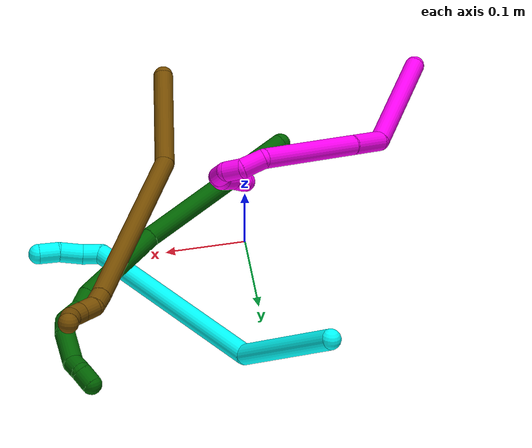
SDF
<sdf version="1.7">
 <world name="default">
  <model name="photoneo_s_sensor">
   <static>1</static>
   <pose>0 0 2 1.57079 1.57079 3.14159</pose>
   <link name="link">
    <inertial><mass>0.1</mass></inertial>
    <sensor name="sensor" type="depth">
     <update_rate>30</update_rate>
     <camera>
      <horizontal_fov>1.22</horizontal_fov>
      <image><width>1920</width><height>1200</height><format>B8G8R8</format></image>
      <clip><near>0.1</near><far>4</far></clip>
      <depth_camera><output>points</output></depth_camera>
     </camera>
     <plugin name="camera_plugin" filename="libgazebo_ros_depth_camera.so">
      <baseline>0.2</baseline>
      <alwaysOn>1</alwaysOn>
      <updateRate>0.0</updateRate>
      <cameraName>camera_ir</cameraName>
      <imageTopicName>/camera/color/image_raw</imageTopicName>
      <cameraInfoTopicName>/camera/color/camera_info</cameraInfoTopicName>
      <depthImageTopicName>/camera/depth/image_raw</depthImageTopicName>
      <depthImageCameraInfoTopicName>/camera/depth/camera_info</depthImageCameraInfoTopicName>
      <pointCloudTopicName>/camera/depth/points</pointCloudTopicName>
      <frameName>fr_optical</frameName>
      <pointCloudCutoff>0.1</pointCloudCutoff>
      <pointCloudCutoffMax>2.0</pointCloudCutoffMax>
      <distortionK1>0</distortionK1>
      <distortionK2>0</distortionK2>
      <distortionK3>0</distortionK3>
      <distortionT1>0</distortionT1>
      <distortionT2>0</distortionT2>
      <CxPrime>0</CxPrime>
      <Cx>0</Cx>
      <Cy>0</Cy>
      <focalLength>0</focalLength>
      <hackBaseline>0</hackBaseline>
     </plugin>
    </sensor>
   </link>
  </model>
  <model name="bin">
   <static>1</static>
   <link name="bottom">
    <collision name="collision-bottom">
     <pose>0 0 -0.01 0 -0 0</pose>
     <geometry><box><size>0.8 0.6 0.02</size></box></geometry>
     <surface>
      <friction><ode><mu>100</mu><mu2>100</mu2></ode></friction>
      <contact><collide_bitmask>65535</collide_bitmask></contact>
     </surface>
    </collision>
   </link>
   <link name="west_wall">
    <collision name="collision-west_wall">
     <pose>-0.41 0 0.1 0 -0 0</pose>
     <geometry><box><size>0.02 0.6 0.2</size></box></geometry>
     <surface>
      <friction><ode><mu>100</mu><mu2>100</mu2></ode></friction>
      <contact><collide_bitmask>65535</collide_bitmask></contact>
     </surface>
    </collision>
   </link>
   <link name="east_wall">
    <collision name="collision-east_wall">
     <pose>0.41 0 0.1 0 -0 0</pose>
     <geometry><box><size>0.02 0.6 0.2</size></box></geometry>
     <surface>
      <friction><ode><mu>100</mu><mu2>100</mu2></ode></friction>
      <contact><collide_bitmask>65535</collide_bitmask></contact>
     </surface>
    </collision>
   </link>
   <link name="south_wall">
    <collision name="collision-south_wall">
     <pose>0 -0.31 0.1 0 -0 0</pose>
     <geometry><box><size>0.8 0.02 0.2</size></box></geometry>
     <surface>
      <friction><ode><mu>100</mu><mu2>100</mu2></ode></friction>
      <contact><collide_bitmask>65535</collide_bitmask></contact>
     </surface>
    </collision>
   </link>
   <link name="north_wall">
    <collision name="collision-north_wall">
     <pose>0 0.31 0.1 0 -0 0</pose>
     <geometry><box><size>0.8 0.02 0.2</size></box></geometry>
     <surface>
      <friction><ode><mu>100</mu><mu2>100</mu2></ode></friction>
      <contact><collide_bitmask>65535</collide_bitmask></contact>
     </surface>
    </collision>
   </link>
  </model>
  <model name="3">
   <static>0</static>
   <link name="3">
    <collision name="collision-cylinder-e_1_1_4">
     <pose>0.060067 -0.028715 0.042455 0.594686 0.864403 0.280842</pose>
     <geometry><cylinder><radius>0.0125</radius><length>0.157924</length></cylinder></geometry>
     <surface>
      <friction><ode><mu>1.16</mu><mu2>1.16</mu2><slip1>0</slip1><slip2>0</slip2></ode></friction>
      <contact><ode><kp>1e+06</kp><kd>1</kd><max_vel>0</max_vel><min_depth>0.001</min_depth></ode></contact>
     </surface>
    </collision>
    <visual name="visual-cylinder-e_1_1_4">
     <pose>0.060067 -0.028715 0.042455 0.594686 0.864403 0.280842</pose>
     <geometry><cylinder><radius>0.0125</radius><length>0.157924</length></cylinder></geometry>
     <material><ambient>0.003922 1 0.996078 1</ambient></material>
    </visual>
    <collision name="collision-cylinder-e_2_4_5">
     <pose>0.240037 -0.110522 0.077009 1.71852 1.14988 1.28895</pose>
     <geometry><cylinder><radius>0.0125</radius><length>0.262739</length></cylinder></geometry>
     <surface>
      <friction><ode><mu>1.16</mu><mu2>1.16</mu2><slip1>0</slip1><slip2>0</slip2></ode></friction>
      <contact><ode><kp>1e+06</kp><kd>1</kd><max_vel>0</max_vel><min_depth>0.001</min_depth></ode></contact>
     </surface>
    </collision>
    <visual name="visual-cylinder-e_2_4_5">
     <pose>0.240037 -0.110522 0.077009 1.71852 1.14988 1.28895</pose>
     <geometry><cylinder><radius>0.0125</radius><length>0.262739</length></cylinder></geometry>
     <material><ambient>0.003922 1 0.996078 1</ambient></material>
    </visual>
    <collision name="collision-cylinder-e_3_5_6">
     <pose>0.364477 -0.174478 0.070447 1.44819 0.392929 0.348455</pose>
     <geometry><cylinder><radius>0.0125</radius><length>0.023697</length></cylinder></geometry>
     <surface>
      <friction><ode><mu>1.16</mu><mu2>1.16</mu2><slip1>0</slip1><slip2>0</slip2></ode></friction>
      <contact><ode><kp>1e+06</kp><kd>1</kd><max_vel>0</max_vel><min_depth>0.001</min_depth></ode></contact>
     </surface>
    </collision>
    <visual name="visual-cylinder-e_3_5_6">
     <pose>0.364477 -0.174478 0.070447 1.44819 0.392929 0.348455</pose>
     <geometry><cylinder><radius>0.0125</radius><length>0.023697</length></cylinder></geometry>
     <material><ambient>0.003922 1 0.996078 1</ambient></material>
    </visual>
    <collision name="collision-cylinder-e_4_6_7">
     <pose>0.371207 -0.200186 0.069565 1.71924 0.145094 0.168304</pose>
     <geometry><cylinder><radius>0.0125</radius><length>0.030338</length></cylinder></geometry>
     <surface>
      <friction><ode><mu>1.16</mu><mu2>1.16</mu2><slip1>0</slip1><slip2>0</slip2></ode></friction>
      <contact><ode><kp>1e+06</kp><kd>1</kd><max_vel>0</max_vel><min_depth>0.001</min_depth></ode></contact>
     </surface>
    </collision>
    <visual name="visual-cylinder-e_4_6_7">
     <pose>0.371207 -0.200186 0.069565 1.71924 0.145094 0.168304</pose>
     <geometry><cylinder><radius>0.0125</radius><length>0.030338</length></cylinder></geometry>
     <material><ambient>0.003922 1 0.996078 1</ambient></material>
    </visual>
    <collision name="collision-cylinder-e_5_7_2">
     <pose>0.374601 -0.227612 0.067911 1.52586 0.095063 0.090891</pose>
     <geometry><cylinder><radius>0.0125</radius><length>0.025301</length></cylinder></geometry>
     <surface>
      <friction><ode><mu>1.16</mu><mu2>1.16</mu2><slip1>0</slip1><slip2>0</slip2></ode></friction>
      <contact><ode><kp>1e+06</kp><kd>1</kd><max_vel>0</max_vel><min_depth>0.001</min_depth></ode></contact>
     </surface>
    </collision>
    <visual name="visual-cylinder-e_5_7_2">
     <pose>0.374601 -0.227612 0.067911 1.52586 0.095063 0.090891</pose>
     <geometry><cylinder><radius>0.0125</radius><length>0.025301</length></cylinder></geometry>
     <material><ambient>0.003922 1 0.996078 1</ambient></material>
    </visual>
    <collision name="collision-sphere-2">
     <pose>0.375802 -0.240192 0.068477 0 -0 0</pose>
     <geometry><sphere><radius>0.0125</radius></sphere></geometry>
     <surface>
      <friction><ode><mu>1.16</mu><mu2>1.16</mu2><slip1>0</slip1><slip2>0</slip2></ode></friction>
      <contact><ode><kp>1e+06</kp><kd>1</kd><max_vel>0</max_vel><min_depth>0.001</min_depth></ode></contact>
     </surface>
    </collision>
    <visual name="visual-sphere-2">
     <pose>0.375802 -0.240192 0.068477 0 -0 0</pose>
     <geometry><sphere><radius>0.0125</radius></sphere></geometry>
     <material><ambient>0.003922 1 0.996078 1</ambient></material>
    </visual>
    <collision name="collision-sphere-7">
     <pose>0.3734 -0.215031 0.067345 0 -0 0</pose>
     <geometry><sphere><radius>0.0125</radius></sphere></geometry>
     <surface>
      <friction><ode><mu>1.16</mu><mu2>1.16</mu2><slip1>0</slip1><slip2>0</slip2></ode></friction>
      <contact><ode><kp>1e+06</kp><kd>1</kd><max_vel>0</max_vel><min_depth>0.001</min_depth></ode></contact>
     </surface>
    </collision>
    <visual name="visual-sphere-7">
     <pose>0.3734 -0.215031 0.067345 0 -0 0</pose>
     <geometry><sphere><radius>0.0125</radius></sphere></geometry>
     <material><ambient>0.003922 1 0.996078 1</ambient></material>
    </visual>
    <collision name="collision-sphere-6">
     <pose>0.369014 -0.185342 0.071785 0 -0 0</pose>
     <geometry><sphere><radius>0.0125</radius></sphere></geometry>
     <surface>
      <friction><ode><mu>1.16</mu><mu2>1.16</mu2><slip1>0</slip1><slip2>0</slip2></ode></friction>
      <contact><ode><kp>1e+06</kp><kd>1</kd><max_vel>0</max_vel><min_depth>0.001</min_depth></ode></contact>
     </surface>
    </collision>
    <visual name="visual-sphere-6">
     <pose>0.369014 -0.185342 0.071785 0 -0 0</pose>
     <geometry><sphere><radius>0.0125</radius></sphere></geometry>
     <material><ambient>0.003922 1 0.996078 1</ambient></material>
    </visual>
    <collision name="collision-sphere-5">
     <pose>0.35994 -0.163615 0.069108 0 -0 0</pose>
     <geometry><sphere><radius>0.0125</radius></sphere></geometry>
     <surface>
      <friction><ode><mu>1.16</mu><mu2>1.16</mu2><slip1>0</slip1><slip2>0</slip2></ode></friction>
      <contact><ode><kp>1e+06</kp><kd>1</kd><max_vel>0</max_vel><min_depth>0.001</min_depth></ode></contact>
     </surface>
    </collision>
    <visual name="visual-sphere-5">
     <pose>0.35994 -0.163615 0.069108 0 -0 0</pose>
     <geometry><sphere><radius>0.0125</radius></sphere></geometry>
     <material><ambient>0.003922 1 0.996078 1</ambient></material>
    </visual>
    <collision name="collision-sphere-1">
     <geometry><sphere><radius>0.0125</radius></sphere></geometry>
     <surface>
      <friction><ode><mu>1.16</mu><mu2>1.16</mu2><slip1>0</slip1><slip2>0</slip2></ode></friction>
      <contact><ode><kp>1e+06</kp><kd>1</kd><max_vel>0</max_vel><min_depth>0.001</min_depth></ode></contact>
     </surface>
    </collision>
    <visual name="visual-sphere-1">
     <geometry><sphere><radius>0.0125</radius></sphere></geometry>
     <material><ambient>0.003922 1 0.996078 1</ambient></material>
    </visual>
    <collision name="collision-sphere-4">
     <pose>0.120134 -0.05743 0.08491 0 -0 0</pose>
     <geometry><sphere><radius>0.0125</radius></sphere></geometry>
     <surface>
      <friction><ode><mu>1.16</mu><mu2>1.16</mu2><slip1>0</slip1><slip2>0</slip2></ode></friction>
      <contact><ode><kp>1e+06</kp><kd>1</kd><max_vel>0</max_vel><min_depth>0.001</min_depth></ode></contact>
     </surface>
    </collision>
    <visual name="visual-sphere-4">
     <pose>0.120134 -0.05743 0.08491 0 -0 0</pose>
     <geometry><sphere><radius>0.0125</radius></sphere></geometry>
     <material><ambient>0.003922 1 0.996078 1</ambient></material>
    </visual>
    <inertial>
     <pose>0.20386 -0.09908 0.064872 0 -0 0</pose>
     <mass>0.5</mass>
     <inertia>
      <ixx>0.001077</ixx>
      <ixy>0</ixy>
      <ixz>0</ixz>
      <iyy>0.002203</iyy>
      <iyz>0</iyz>
      <izz>-0.000895</izz>
     </inertia>
    </inertial>
   </link>
   <pose>-0.048997 0.288097 0.189167 -2.93552 0.38466 -1.3883</pose>
  </model>
  <model name="6">
   <static>0</static>
   <link name="6">
    <collision name="collision-cylinder-e_1_1_4">
     <pose>0.023035 0.021707 0.104401 -0.204998 0.212754 -0.021966</pose>
     <geometry><cylinder><radius>0.0125</radius><length>0.218187</length></cylinder></geometry>
     <surface>
      <friction><ode><mu>1.16</mu><mu2>1.16</mu2><slip1>0</slip1><slip2>0</slip2></ode></friction>
      <contact><ode><kp>1e+06</kp><kd>1</kd><max_vel>0</max_vel><min_depth>0.001</min_depth></ode></contact>
     </surface>
    </collision>
    <visual name="visual-cylinder-e_1_1_4">
     <pose>0.023035 0.021707 0.104401 -0.204998 0.212754 -0.021966</pose>
     <geometry><cylinder><radius>0.0125</radius><length>0.218187</length></cylinder></geometry>
     <material><ambient>0 0.392157 0.003922 1</ambient></material>
    </visual>
    <collision name="collision-cylinder-e_2_4_5">
     <pose>0.06264 0.058884 0.261091 -0.287656 0.294995 -0.043029</pose>
     <geometry><cylinder><radius>0.0125</radius><length>0.113983</length></cylinder></geometry>
     <surface>
      <friction><ode><mu>1.16</mu><mu2>1.16</mu2><slip1>0</slip1><slip2>0</slip2></ode></friction>
      <contact><ode><kp>1e+06</kp><kd>1</kd><max_vel>0</max_vel><min_depth>0.001</min_depth></ode></contact>
     </surface>
    </collision>
    <visual name="visual-cylinder-e_2_4_5">
     <pose>0.06264 0.058884 0.261091 -0.287656 0.294995 -0.043029</pose>
     <geometry><cylinder><radius>0.0125</radius><length>0.113983</length></cylinder></geometry>
     <material><ambient>0 0.392157 0.003922 1</ambient></material>
    </visual>
    <collision name="collision-cylinder-e_3_5_6">
     <pose>0.083838 0.081736 0.322191 -0.697418 0.382843 -0.140681</pose>
     <geometry><cylinder><radius>0.0125</radius><length>0.024781</length></cylinder></geometry>
     <surface>
      <friction><ode><mu>1.16</mu><mu2>1.16</mu2><slip1>0</slip1><slip2>0</slip2></ode></friction>
      <contact><ode><kp>1e+06</kp><kd>1</kd><max_vel>0</max_vel><min_depth>0.001</min_depth></ode></contact>
     </surface>
    </collision>
    <visual name="visual-cylinder-e_3_5_6">
     <pose>0.083838 0.081736 0.322191 -0.697418 0.382843 -0.140681</pose>
     <geometry><cylinder><radius>0.0125</radius><length>0.024781</length></cylinder></geometry>
     <material><ambient>0 0.392157 0.003922 1</ambient></material>
    </visual>
    <collision name="collision-cylinder-e_4_6_7">
     <pose>0.089815 0.097073 0.343885 -0.553102 0.088816 -0.025223</pose>
     <geometry><cylinder><radius>0.0125</radius><length>0.030405</length></cylinder></geometry>
     <surface>
      <friction><ode><mu>1.16</mu><mu2>1.16</mu2><slip1>0</slip1><slip2>0</slip2></ode></friction>
      <contact><ode><kp>1e+06</kp><kd>1</kd><max_vel>0</max_vel><min_depth>0.001</min_depth></ode></contact>
     </surface>
    </collision>
    <visual name="visual-cylinder-e_4_6_7">
     <pose>0.089815 0.097073 0.343885 -0.553102 0.088816 -0.025223</pose>
     <geometry><cylinder><radius>0.0125</radius><length>0.030405</length></cylinder></geometry>
     <material><ambient>0 0.392157 0.003922 1</ambient></material>
    </visual>
    <collision name="collision-cylinder-e_5_7_8">
     <pose>0.094264 0.118231 0.362436 -1.16542 0.21254 -0.140373</pose>
     <geometry><cylinder><radius>0.0125</radius><length>0.029398</length></cylinder></geometry>
     <surface>
      <friction><ode><mu>1.16</mu><mu2>1.16</mu2><slip1>0</slip1><slip2>0</slip2></ode></friction>
      <contact><ode><kp>1e+06</kp><kd>1</kd><max_vel>0</max_vel><min_depth>0.001</min_depth></ode></contact>
     </surface>
    </collision>
    <visual name="visual-cylinder-e_5_7_8">
     <pose>0.094264 0.118231 0.362436 -1.16542 0.21254 -0.140373</pose>
     <geometry><cylinder><radius>0.0125</radius><length>0.029398</length></cylinder></geometry>
     <material><ambient>0 0.392157 0.003922 1</ambient></material>
    </visual>
    <collision name="collision-cylinder-e_6_8_9">
     <pose>0.11062 0.147829 0.372208 -1.32544 0.66511 -0.526608</pose>
     <geometry><cylinder><radius>0.0125</radius><length>0.042954</length></cylinder></geometry>
     <surface>
      <friction><ode><mu>1.16</mu><mu2>1.16</mu2><slip1>0</slip1><slip2>0</slip2></ode></friction>
      <contact><ode><kp>1e+06</kp><kd>1</kd><max_vel>0</max_vel><min_depth>0.001</min_depth></ode></contact>
     </surface>
    </collision>
    <visual name="visual-cylinder-e_6_8_9">
     <pose>0.11062 0.147829 0.372208 -1.32544 0.66511 -0.526608</pose>
     <geometry><cylinder><radius>0.0125</radius><length>0.042954</length></cylinder></geometry>
     <material><ambient>0 0.392157 0.003922 1</ambient></material>
    </visual>
    <collision name="collision-cylinder-e_7_9_10">
     <pose>0.127276 0.173734 0.375473 -1.65883 0.342238 -0.373078</pose>
     <geometry><cylinder><radius>0.0125</radius><length>0.020275</length></cylinder></geometry>
     <surface>
      <friction><ode><mu>1.16</mu><mu2>1.16</mu2><slip1>0</slip1><slip2>0</slip2></ode></friction>
      <contact><ode><kp>1e+06</kp><kd>1</kd><max_vel>0</max_vel><min_depth>0.001</min_depth></ode></contact>
     </surface>
    </collision>
    <visual name="visual-cylinder-e_7_9_10">
     <pose>0.127276 0.173734 0.375473 -1.65883 0.342238 -0.373078</pose>
     <geometry><cylinder><radius>0.0125</radius><length>0.020275</length></cylinder></geometry>
     <material><ambient>0 0.392157 0.003922 1</ambient></material>
    </visual>
    <collision name="collision-cylinder-e_8_10_2">
     <pose>0.13836 0.189075 0.371952 -2.00191 0.874965 -1.26108</pose>
     <geometry><cylinder><radius>0.0125</radius><length>0.020016</length></cylinder></geometry>
     <surface>
      <friction><ode><mu>1.16</mu><mu2>1.16</mu2><slip1>0</slip1><slip2>0</slip2></ode></friction>
      <contact><ode><kp>1e+06</kp><kd>1</kd><max_vel>0</max_vel><min_depth>0.001</min_depth></ode></contact>
     </surface>
    </collision>
    <visual name="visual-cylinder-e_8_10_2">
     <pose>0.13836 0.189075 0.371952 -2.00191 0.874965 -1.26108</pose>
     <geometry><cylinder><radius>0.0125</radius><length>0.020016</length></cylinder></geometry>
     <material><ambient>0 0.392157 0.003922 1</ambient></material>
    </visual>
    <collision name="collision-sphere-2">
     <pose>0.146041 0.194904 0.369272 0 -0 0</pose>
     <geometry><sphere><radius>0.0125</radius></sphere></geometry>
     <surface>
      <friction><ode><mu>1.16</mu><mu2>1.16</mu2><slip1>0</slip1><slip2>0</slip2></ode></friction>
      <contact><ode><kp>1e+06</kp><kd>1</kd><max_vel>0</max_vel><min_depth>0.001</min_depth></ode></contact>
     </surface>
    </collision>
    <visual name="visual-sphere-2">
     <pose>0.146041 0.194904 0.369272 0 -0 0</pose>
     <geometry><sphere><radius>0.0125</radius></sphere></geometry>
     <material><ambient>0 0.392157 0.003922 1</ambient></material>
    </visual>
    <collision name="collision-sphere-10">
     <pose>0.130679 0.183247 0.374633 0 -0 0</pose>
     <geometry><sphere><radius>0.0125</radius></sphere></geometry>
     <surface>
      <friction><ode><mu>1.16</mu><mu2>1.16</mu2><slip1>0</slip1><slip2>0</slip2></ode></friction>
      <contact><ode><kp>1e+06</kp><kd>1</kd><max_vel>0</max_vel><min_depth>0.001</min_depth></ode></contact>
     </surface>
    </collision>
    <visual name="visual-sphere-10">
     <pose>0.130679 0.183247 0.374633 0 -0 0</pose>
     <geometry><sphere><radius>0.0125</radius></sphere></geometry>
     <material><ambient>0 0.392157 0.003922 1</ambient></material>
    </visual>
    <collision name="collision-sphere-9">
     <pose>0.123874 0.164222 0.376312 0 -0 0</pose>
     <geometry><sphere><radius>0.0125</radius></sphere></geometry>
     <surface>
      <friction><ode><mu>1.16</mu><mu2>1.16</mu2><slip1>0</slip1><slip2>0</slip2></ode></friction>
      <contact><ode><kp>1e+06</kp><kd>1</kd><max_vel>0</max_vel><min_depth>0.001</min_depth></ode></contact>
     </surface>
    </collision>
    <visual name="visual-sphere-9">
     <pose>0.123874 0.164222 0.376312 0 -0 0</pose>
     <geometry><sphere><radius>0.0125</radius></sphere></geometry>
     <material><ambient>0 0.392157 0.003922 1</ambient></material>
    </visual>
    <collision name="collision-sphere-4">
     <pose>0.046071 0.043414 0.208802 0 -0 0</pose>
     <geometry><sphere><radius>0.0125</radius></sphere></geometry>
     <surface>
      <friction><ode><mu>1.16</mu><mu2>1.16</mu2><slip1>0</slip1><slip2>0</slip2></ode></friction>
      <contact><ode><kp>1e+06</kp><kd>1</kd><max_vel>0</max_vel><min_depth>0.001</min_depth></ode></contact>
     </surface>
    </collision>
    <visual name="visual-sphere-4">
     <pose>0.046071 0.043414 0.208802 0 -0 0</pose>
     <geometry><sphere><radius>0.0125</radius></sphere></geometry>
     <material><ambient>0 0.392157 0.003922 1</ambient></material>
    </visual>
    <collision name="collision-sphere-1">
     <geometry><sphere><radius>0.0125</radius></sphere></geometry>
     <surface>
      <friction><ode><mu>1.16</mu><mu2>1.16</mu2><slip1>0</slip1><slip2>0</slip2></ode></friction>
      <contact><ode><kp>1e+06</kp><kd>1</kd><max_vel>0</max_vel><min_depth>0.001</min_depth></ode></contact>
     </surface>
    </collision>
    <visual name="visual-sphere-1">
     <geometry><sphere><radius>0.0125</radius></sphere></geometry>
     <material><ambient>0 0.392157 0.003922 1</ambient></material>
    </visual>
    <collision name="collision-sphere-8">
     <pose>0.097365 0.131435 0.368103 0 -0 0</pose>
     <geometry><sphere><radius>0.0125</radius></sphere></geometry>
     <surface>
      <friction><ode><mu>1.16</mu><mu2>1.16</mu2><slip1>0</slip1><slip2>0</slip2></ode></friction>
      <contact><ode><kp>1e+06</kp><kd>1</kd><max_vel>0</max_vel><min_depth>0.001</min_depth></ode></contact>
     </surface>
    </collision>
    <visual name="visual-sphere-8">
     <pose>0.097365 0.131435 0.368103 0 -0 0</pose>
     <geometry><sphere><radius>0.0125</radius></sphere></geometry>
     <material><ambient>0 0.392157 0.003922 1</ambient></material>
    </visual>
    <collision name="collision-sphere-5">
     <pose>0.07921 0.074355 0.313381 0 -0 0</pose>
     <geometry><sphere><radius>0.0125</radius></sphere></geometry>
     <surface>
      <friction><ode><mu>1.16</mu><mu2>1.16</mu2><slip1>0</slip1><slip2>0</slip2></ode></friction>
      <contact><ode><kp>1e+06</kp><kd>1</kd><max_vel>0</max_vel><min_depth>0.001</min_depth></ode></contact>
     </surface>
    </collision>
    <visual name="visual-sphere-5">
     <pose>0.07921 0.074355 0.313381 0 -0 0</pose>
     <geometry><sphere><radius>0.0125</radius></sphere></geometry>
     <material><ambient>0 0.392157 0.003922 1</ambient></material>
    </visual>
    <collision name="collision-sphere-6">
     <pose>0.088467 0.089118 0.331 0 -0 0</pose>
     <geometry><sphere><radius>0.0125</radius></sphere></geometry>
     <surface>
      <friction><ode><mu>1.16</mu><mu2>1.16</mu2><slip1>0</slip1><slip2>0</slip2></ode></friction>
      <contact><ode><kp>1e+06</kp><kd>1</kd><max_vel>0</max_vel><min_depth>0.001</min_depth></ode></contact>
     </surface>
    </collision>
    <visual name="visual-sphere-6">
     <pose>0.088467 0.089118 0.331 0 -0 0</pose>
     <geometry><sphere><radius>0.0125</radius></sphere></geometry>
     <material><ambient>0 0.392157 0.003922 1</ambient></material>
    </visual>
    <collision name="collision-sphere-7">
     <pose>0.091164 0.105028 0.35677 0 -0 0</pose>
     <geometry><sphere><radius>0.0125</radius></sphere></geometry>
     <surface>
      <friction><ode><mu>1.16</mu><mu2>1.16</mu2><slip1>0</slip1><slip2>0</slip2></ode></friction>
      <contact><ode><kp>1e+06</kp><kd>1</kd><max_vel>0</max_vel><min_depth>0.001</min_depth></ode></contact>
     </surface>
    </collision>
    <visual name="visual-sphere-7">
     <pose>0.091164 0.105028 0.35677 0 -0 0</pose>
     <geometry><sphere><radius>0.0125</radius></sphere></geometry>
     <material><ambient>0 0.392157 0.003922 1</ambient></material>
    </visual>
    <inertial>
     <pose>0.059694 0.067115 0.225359 0 -0 0</pose>
     <mass>0.5</mass>
     <inertia>
      <ixx>0.000974</ixx>
      <ixy>0</ixy>
      <ixz>0</ixz>
      <iyy>0.000976</iyy>
      <iyz>0</iyz>
      <izz>-0.000425</izz>
     </inertia>
    </inertial>
   </link>
   <pose>-0.063446 -0.103847 0.054056 1.47659 0.899389 1.775</pose>
  </model>
  <model name="10">
   <static>0</static>
   <link name="10">
    <collision name="collision-cylinder-e_1_1_4">
     <pose>0.045809 0.073137 -0.013675 -1.75565 0.551873 -0.657294</pose>
     <geometry><cylinder><radius>0.0125</radius><length>0.174751</length></cylinder></geometry>
     <surface>
      <friction><ode><mu>1.16</mu><mu2>1.16</mu2><slip1>0</slip1><slip2>0</slip2></ode></friction>
      <contact><ode><kp>1e+06</kp><kd>1</kd><max_vel>0</max_vel><min_depth>0.001</min_depth></ode></contact>
     </surface>
    </collision>
    <visual name="visual-cylinder-e_1_1_4">
     <pose>0.045809 0.073137 -0.013675 -1.75565 0.551873 -0.657294</pose>
     <geometry><cylinder><radius>0.0125</radius><length>0.174751</length></cylinder></geometry>
     <material><ambient>1 0 0.964706 1</ambient></material>
    </visual>
    <collision name="collision-cylinder-e_2_4_5">
     <pose>0.1136 0.155264 -0.035436 -2.30324 1.06789 -1.84991</pose>
     <geometry><cylinder><radius>0.0125</radius><length>0.050174</length></cylinder></geometry>
     <surface>
      <friction><ode><mu>1.16</mu><mu2>1.16</mu2><slip1>0</slip1><slip2>0</slip2></ode></friction>
      <contact><ode><kp>1e+06</kp><kd>1</kd><max_vel>0</max_vel><min_depth>0.001</min_depth></ode></contact>
     </surface>
    </collision>
    <visual name="visual-cylinder-e_2_4_5">
     <pose>0.1136 0.155264 -0.035436 -2.30324 1.06789 -1.84991</pose>
     <geometry><cylinder><radius>0.0125</radius><length>0.050174</length></cylinder></geometry>
     <material><ambient>1 0 0.964706 1</ambient></material>
    </visual>
    <collision name="collision-cylinder-e_3_5_6">
     <pose>0.19461 0.185215 -0.074556 -2.54757 1.00544 -2.12573</pose>
     <geometry><cylinder><radius>0.0125</radius><length>0.139812</length></cylinder></geometry>
     <surface>
      <friction><ode><mu>1.16</mu><mu2>1.16</mu2><slip1>0</slip1><slip2>0</slip2></ode></friction>
      <contact><ode><kp>1e+06</kp><kd>1</kd><max_vel>0</max_vel><min_depth>0.001</min_depth></ode></contact>
     </surface>
    </collision>
    <visual name="visual-cylinder-e_3_5_6">
     <pose>0.19461 0.185215 -0.074556 -2.54757 1.00544 -2.12573</pose>
     <geometry><cylinder><radius>0.0125</radius><length>0.139812</length></cylinder></geometry>
     <material><ambient>1 0 0.964706 1</ambient></material>
    </visual>
    <collision name="collision-cylinder-e_4_6_7">
     <pose>0.260164 0.21002 -0.117831 -2.83724 0.470489 -2.00319</pose>
     <geometry><cylinder><radius>0.0125</radius><length>0.028789</length></cylinder></geometry>
     <surface>
      <friction><ode><mu>1.16</mu><mu2>1.16</mu2><slip1>0</slip1><slip2>0</slip2></ode></friction>
      <contact><ode><kp>1e+06</kp><kd>1</kd><max_vel>0</max_vel><min_depth>0.001</min_depth></ode></contact>
     </surface>
    </collision>
    <visual name="visual-cylinder-e_4_6_7">
     <pose>0.260164 0.21002 -0.117831 -2.83724 0.470489 -2.00319</pose>
     <geometry><cylinder><radius>0.0125</radius><length>0.028789</length></cylinder></geometry>
     <material><ambient>1 0 0.964706 1</ambient></material>
    </visual>
    <collision name="collision-cylinder-e_5_7_8">
     <pose>0.268274 0.21132 -0.14109 2.91456 0.139247 1.09795</pose>
     <geometry><cylinder><radius>0.0125</radius><length>0.022838</length></cylinder></geometry>
     <surface>
      <friction><ode><mu>1.16</mu><mu2>1.16</mu2><slip1>0</slip1><slip2>0</slip2></ode></friction>
      <contact><ode><kp>1e+06</kp><kd>1</kd><max_vel>0</max_vel><min_depth>0.001</min_depth></ode></contact>
     </surface>
    </collision>
    <visual name="visual-cylinder-e_5_7_8">
     <pose>0.268274 0.21132 -0.14109 2.91456 0.139247 1.09795</pose>
     <geometry><cylinder><radius>0.0125</radius><length>0.022838</length></cylinder></geometry>
     <material><ambient>1 0 0.964706 1</ambient></material>
    </visual>
    <collision name="collision-cylinder-e_6_8_9">
     <pose>0.264501 0.205759 -0.160858 2.80966 -0.524727 -2.0262</pose>
     <geometry><cylinder><radius>0.0125</radius><length>0.021388</length></cylinder></geometry>
     <surface>
      <friction><ode><mu>1.16</mu><mu2>1.16</mu2><slip1>0</slip1><slip2>0</slip2></ode></friction>
      <contact><ode><kp>1e+06</kp><kd>1</kd><max_vel>0</max_vel><min_depth>0.001</min_depth></ode></contact>
     </surface>
    </collision>
    <visual name="visual-cylinder-e_6_8_9">
     <pose>0.264501 0.205759 -0.160858 2.80966 -0.524727 -2.0262</pose>
     <geometry><cylinder><radius>0.0125</radius><length>0.021388</length></cylinder></geometry>
     <material><ambient>1 0 0.964706 1</ambient></material>
    </visual>
    <collision name="collision-cylinder-e_7_9_10">
     <pose>0.25012 0.199435 -0.172884 2.35129 -1.09454 -1.94113</pose>
     <geometry><cylinder><radius>0.0125</radius><length>0.020307</length></cylinder></geometry>
     <surface>
      <friction><ode><mu>1.16</mu><mu2>1.16</mu2><slip1>0</slip1><slip2>0</slip2></ode></friction>
      <contact><ode><kp>1e+06</kp><kd>1</kd><max_vel>0</max_vel><min_depth>0.001</min_depth></ode></contact>
     </surface>
    </collision>
    <visual name="visual-cylinder-e_7_9_10">
     <pose>0.25012 0.199435 -0.172884 2.35129 -1.09454 -1.94113</pose>
     <geometry><cylinder><radius>0.0125</radius><length>0.020307</length></cylinder></geometry>
     <material><ambient>1 0 0.964706 1</ambient></material>
    </visual>
    <collision name="collision-cylinder-e_8_10_11">
     <pose>0.231363 0.192593 -0.173728 0.968253 -1.15575 -0.660734</pose>
     <geometry><cylinder><radius>0.0125</radius><length>0.021274</length></cylinder></geometry>
     <surface>
      <friction><ode><mu>1.16</mu><mu2>1.16</mu2><slip1>0</slip1><slip2>0</slip2></ode></friction>
      <contact><ode><kp>1e+06</kp><kd>1</kd><max_vel>0</max_vel><min_depth>0.001</min_depth></ode></contact>
     </surface>
    </collision>
    <visual name="visual-cylinder-e_8_10_11">
     <pose>0.231363 0.192593 -0.173728 0.968253 -1.15575 -0.660734</pose>
     <geometry><cylinder><radius>0.0125</radius><length>0.021274</length></cylinder></geometry>
     <material><ambient>1 0 0.964706 1</ambient></material>
    </visual>
    <collision name="collision-cylinder-e_9_11_2">
     <pose>0.211692 0.187636 -0.168847 0.526163 -1.29304 -0.401066</pose>
     <geometry><cylinder><radius>0.0125</radius><length>0.020667</length></cylinder></geometry>
     <surface>
      <friction><ode><mu>1.16</mu><mu2>1.16</mu2><slip1>0</slip1><slip2>0</slip2></ode></friction>
      <contact><ode><kp>1e+06</kp><kd>1</kd><max_vel>0</max_vel><min_depth>0.001</min_depth></ode></contact>
     </surface>
    </collision>
    <visual name="visual-cylinder-e_9_11_2">
     <pose>0.211692 0.187636 -0.168847 0.526163 -1.29304 -0.401066</pose>
     <geometry><cylinder><radius>0.0125</radius><length>0.020667</length></cylinder></geometry>
     <material><ambient>1 0 0.964706 1</ambient></material>
    </visual>
    <collision name="collision-sphere-2">
     <pose>0.201754 0.186213 -0.166397 0 -0 0</pose>
     <geometry><sphere><radius>0.0125</radius></sphere></geometry>
     <surface>
      <friction><ode><mu>1.16</mu><mu2>1.16</mu2><slip1>0</slip1><slip2>0</slip2></ode></friction>
      <contact><ode><kp>1e+06</kp><kd>1</kd><max_vel>0</max_vel><min_depth>0.001</min_depth></ode></contact>
     </surface>
    </collision>
    <visual name="visual-sphere-2">
     <pose>0.201754 0.186213 -0.166397 0 -0 0</pose>
     <geometry><sphere><radius>0.0125</radius></sphere></geometry>
     <material><ambient>1 0 0.964706 1</ambient></material>
    </visual>
    <collision name="collision-sphere-11">
     <pose>0.221629 0.189059 -0.171297 0 -0 0</pose>
     <geometry><sphere><radius>0.0125</radius></sphere></geometry>
     <surface>
      <friction><ode><mu>1.16</mu><mu2>1.16</mu2><slip1>0</slip1><slip2>0</slip2></ode></friction>
      <contact><ode><kp>1e+06</kp><kd>1</kd><max_vel>0</max_vel><min_depth>0.001</min_depth></ode></contact>
     </surface>
    </collision>
    <visual name="visual-sphere-11">
     <pose>0.221629 0.189059 -0.171297 0 -0 0</pose>
     <geometry><sphere><radius>0.0125</radius></sphere></geometry>
     <material><ambient>1 0 0.964706 1</ambient></material>
    </visual>
    <collision name="collision-sphere-10">
     <pose>0.241097 0.196127 -0.176159 0 -0 0</pose>
     <geometry><sphere><radius>0.0125</radius></sphere></geometry>
     <surface>
      <friction><ode><mu>1.16</mu><mu2>1.16</mu2><slip1>0</slip1><slip2>0</slip2></ode></friction>
      <contact><ode><kp>1e+06</kp><kd>1</kd><max_vel>0</max_vel><min_depth>0.001</min_depth></ode></contact>
     </surface>
    </collision>
    <visual name="visual-sphere-10">
     <pose>0.241097 0.196127 -0.176159 0 -0 0</pose>
     <geometry><sphere><radius>0.0125</radius></sphere></geometry>
     <material><ambient>1 0 0.964706 1</ambient></material>
    </visual>
    <collision name="collision-sphere-9">
     <pose>0.259144 0.202743 -0.169608 0 -0 0</pose>
     <geometry><sphere><radius>0.0125</radius></sphere></geometry>
     <surface>
      <friction><ode><mu>1.16</mu><mu2>1.16</mu2><slip1>0</slip1><slip2>0</slip2></ode></friction>
      <contact><ode><kp>1e+06</kp><kd>1</kd><max_vel>0</max_vel><min_depth>0.001</min_depth></ode></contact>
     </surface>
    </collision>
    <visual name="visual-sphere-9">
     <pose>0.259144 0.202743 -0.169608 0 -0 0</pose>
     <geometry><sphere><radius>0.0125</radius></sphere></geometry>
     <material><ambient>1 0 0.964706 1</ambient></material>
    </visual>
    <collision name="collision-sphere-4">
     <pose>0.091619 0.146273 -0.027351 0 -0 0</pose>
     <geometry><sphere><radius>0.0125</radius></sphere></geometry>
     <surface>
      <friction><ode><mu>1.16</mu><mu2>1.16</mu2><slip1>0</slip1><slip2>0</slip2></ode></friction>
      <contact><ode><kp>1e+06</kp><kd>1</kd><max_vel>0</max_vel><min_depth>0.001</min_depth></ode></contact>
     </surface>
    </collision>
    <visual name="visual-sphere-4">
     <pose>0.091619 0.146273 -0.027351 0 -0 0</pose>
     <geometry><sphere><radius>0.0125</radius></sphere></geometry>
     <material><ambient>1 0 0.964706 1</ambient></material>
    </visual>
    <collision name="collision-sphere-1">
     <geometry><sphere><radius>0.0125</radius></sphere></geometry>
     <surface>
      <friction><ode><mu>1.16</mu><mu2>1.16</mu2><slip1>0</slip1><slip2>0</slip2></ode></friction>
      <contact><ode><kp>1e+06</kp><kd>1</kd><max_vel>0</max_vel><min_depth>0.001</min_depth></ode></contact>
     </surface>
    </collision>
    <visual name="visual-sphere-1">
     <geometry><sphere><radius>0.0125</radius></sphere></geometry>
     <material><ambient>1 0 0.964706 1</ambient></material>
    </visual>
    <collision name="collision-sphere-8">
     <pose>0.269859 0.208775 -0.152108 0 -0 0</pose>
     <geometry><sphere><radius>0.0125</radius></sphere></geometry>
     <surface>
      <friction><ode><mu>1.16</mu><mu2>1.16</mu2><slip1>0</slip1><slip2>0</slip2></ode></friction>
      <contact><ode><kp>1e+06</kp><kd>1</kd><max_vel>0</max_vel><min_depth>0.001</min_depth></ode></contact>
     </surface>
    </collision>
    <visual name="visual-sphere-8">
     <pose>0.269859 0.208775 -0.152108 0 -0 0</pose>
     <geometry><sphere><radius>0.0125</radius></sphere></geometry>
     <material><ambient>1 0 0.964706 1</ambient></material>
    </visual>
    <collision name="collision-sphere-5">
     <pose>0.135581 0.164254 -0.043521 0 -0 0</pose>
     <geometry><sphere><radius>0.0125</radius></sphere></geometry>
     <surface>
      <friction><ode><mu>1.16</mu><mu2>1.16</mu2><slip1>0</slip1><slip2>0</slip2></ode></friction>
      <contact><ode><kp>1e+06</kp><kd>1</kd><max_vel>0</max_vel><min_depth>0.001</min_depth></ode></contact>
     </surface>
    </collision>
    <visual name="visual-sphere-5">
     <pose>0.135581 0.164254 -0.043521 0 -0 0</pose>
     <geometry><sphere><radius>0.0125</radius></sphere></geometry>
     <material><ambient>1 0 0.964706 1</ambient></material>
    </visual>
    <collision name="collision-sphere-6">
     <pose>0.253638 0.206175 -0.10559 0 -0 0</pose>
     <geometry><sphere><radius>0.0125</radius></sphere></geometry>
     <surface>
      <friction><ode><mu>1.16</mu><mu2>1.16</mu2><slip1>0</slip1><slip2>0</slip2></ode></friction>
      <contact><ode><kp>1e+06</kp><kd>1</kd><max_vel>0</max_vel><min_depth>0.001</min_depth></ode></contact>
     </surface>
    </collision>
    <visual name="visual-sphere-6">
     <pose>0.253638 0.206175 -0.10559 0 -0 0</pose>
     <geometry><sphere><radius>0.0125</radius></sphere></geometry>
     <material><ambient>1 0 0.964706 1</ambient></material>
    </visual>
    <collision name="collision-sphere-7">
     <pose>0.266689 0.213865 -0.130072 0 -0 0</pose>
     <geometry><sphere><radius>0.0125</radius></sphere></geometry>
     <surface>
      <friction><ode><mu>1.16</mu><mu2>1.16</mu2><slip1>0</slip1><slip2>0</slip2></ode></friction>
      <contact><ode><kp>1e+06</kp><kd>1</kd><max_vel>0</max_vel><min_depth>0.001</min_depth></ode></contact>
     </surface>
    </collision>
    <visual name="visual-sphere-7">
     <pose>0.266689 0.213865 -0.130072 0 -0 0</pose>
     <geometry><sphere><radius>0.0125</radius></sphere></geometry>
     <material><ambient>1 0 0.964706 1</ambient></material>
    </visual>
    <inertial>
     <pose>0.149128 0.147529 -0.070685 0 -0 0</pose>
     <mass>0.5</mass>
     <inertia>
      <ixx>-9.8e-05</ixx>
      <ixy>0</ixy>
      <ixz>0</ixz>
      <iyy>-4.8e-05</iyy>
      <iyz>0</iyz>
      <izz>-0.000905</izz>
     </inertia>
    </inertial>
   </link>
   <pose>-0.263483 -0.227962 0.015834 -0.121223 -0.941149 0.083082</pose>
  </model>
  <model name="12">
   <static>0</static>
   <link name="12">
    <collision name="collision-cylinder-e_1_1_4">
     <pose>-0.022591 0.055481 -0.038281 -2.17477 -0.323385 0.602538</pose>
     <geometry><cylinder><radius>0.0125</radius><length>0.142182</length></cylinder></geometry>
     <surface>
      <friction><ode><mu>1.16</mu><mu2>1.16</mu2><slip1>0</slip1><slip2>0</slip2></ode></friction>
      <contact><ode><kp>1e+06</kp><kd>1</kd><max_vel>0</max_vel><min_depth>0.001</min_depth></ode></contact>
     </surface>
    </collision>
    <visual name="visual-cylinder-e_1_1_4">
     <pose>-0.022591 0.055481 -0.038281 -2.17477 -0.323385 0.602538</pose>
     <geometry><cylinder><radius>0.0125</radius><length>0.142182</length></cylinder></geometry>
     <material><ambient>0.466667 0.301961 0 1</ambient></material>
    </visual>
    <collision name="collision-cylinder-e_2_4_5">
     <pose>-0.052901 0.241888 -0.117161 -1.87148 -0.056251 0.076319</pose>
     <geometry><cylinder><radius>0.0125</radius><length>0.274587</length></cylinder></geometry>
     <surface>
      <friction><ode><mu>1.16</mu><mu2>1.16</mu2><slip1>0</slip1><slip2>0</slip2></ode></friction>
      <contact><ode><kp>1e+06</kp><kd>1</kd><max_vel>0</max_vel><min_depth>0.001</min_depth></ode></contact>
     </surface>
    </collision>
    <visual name="visual-cylinder-e_2_4_5">
     <pose>-0.052901 0.241888 -0.117161 -1.87148 -0.056251 0.076319</pose>
     <geometry><cylinder><radius>0.0125</radius><length>0.274587</length></cylinder></geometry>
     <material><ambient>0.466667 0.301961 0 1</ambient></material>
    </visual>
    <collision name="collision-cylinder-e_3_5_6">
     <pose>-0.060664 0.3829 -0.160581 -1.84356 -0.004235 0.005582</pose>
     <geometry><cylinder><radius>0.0125</radius><length>0.020947</length></cylinder></geometry>
     <surface>
      <friction><ode><mu>1.16</mu><mu2>1.16</mu2><slip1>0</slip1><slip2>0</slip2></ode></friction>
      <contact><ode><kp>1e+06</kp><kd>1</kd><max_vel>0</max_vel><min_depth>0.001</min_depth></ode></contact>
     </surface>
    </collision>
    <visual name="visual-cylinder-e_3_5_6">
     <pose>-0.060664 0.3829 -0.160581 -1.84356 -0.004235 0.005582</pose>
     <geometry><cylinder><radius>0.0125</radius><length>0.020947</length></cylinder></geometry>
     <material><ambient>0.466667 0.301961 0 1</ambient></material>
    </visual>
    <collision name="collision-cylinder-e_4_6_7">
     <pose>-0.055631 0.401868 -0.165097 -1.75934 0.511747 -0.612588</pose>
     <geometry><cylinder><radius>0.0125</radius><length>0.02074</length></cylinder></geometry>
     <surface>
      <friction><ode><mu>1.16</mu><mu2>1.16</mu2><slip1>0</slip1><slip2>0</slip2></ode></friction>
      <contact><ode><kp>1e+06</kp><kd>1</kd><max_vel>0</max_vel><min_depth>0.001</min_depth></ode></contact>
     </surface>
    </collision>
    <visual name="visual-cylinder-e_4_6_7">
     <pose>-0.055631 0.401868 -0.165097 -1.75934 0.511747 -0.612588</pose>
     <geometry><cylinder><radius>0.0125</radius><length>0.02074</length></cylinder></geometry>
     <material><ambient>0.466667 0.301961 0 1</ambient></material>
    </visual>
    <collision name="collision-cylinder-e_5_7_8">
     <pose>-0.047761 0.420477 -0.166859 -1.57766 0.279395 -0.281296</pose>
     <geometry><cylinder><radius>0.0125</radius><length>0.020242</length></cylinder></geometry>
     <surface>
      <friction><ode><mu>1.16</mu><mu2>1.16</mu2><slip1>0</slip1><slip2>0</slip2></ode></friction>
      <contact><ode><kp>1e+06</kp><kd>1</kd><max_vel>0</max_vel><min_depth>0.001</min_depth></ode></contact>
     </surface>
    </collision>
    <visual name="visual-cylinder-e_5_7_8">
     <pose>-0.047761 0.420477 -0.166859 -1.57766 0.279395 -0.281296</pose>
     <geometry><cylinder><radius>0.0125</radius><length>0.020242</length></cylinder></geometry>
     <material><ambient>0.466667 0.301961 0 1</ambient></material>
    </visual>
    <collision name="collision-cylinder-e_6_8_2">
     <pose>-0.047331 0.440569 -0.166236 -1.50435 -0.223482 0.209213</pose>
     <geometry><cylinder><radius>0.0125</radius><length>0.021302</length></cylinder></geometry>
     <surface>
      <friction><ode><mu>1.16</mu><mu2>1.16</mu2><slip1>0</slip1><slip2>0</slip2></ode></friction>
      <contact><ode><kp>1e+06</kp><kd>1</kd><max_vel>0</max_vel><min_depth>0.001</min_depth></ode></contact>
     </surface>
    </collision>
    <visual name="visual-cylinder-e_6_8_2">
     <pose>-0.047331 0.440569 -0.166236 -1.50435 -0.223482 0.209213</pose>
     <geometry><cylinder><radius>0.0125</radius><length>0.021302</length></cylinder></geometry>
     <material><ambient>0.466667 0.301961 0 1</ambient></material>
    </visual>
    <collision name="collision-sphere-2">
     <pose>-0.049691 0.450932 -0.165546 0 -0 0</pose>
     <geometry><sphere><radius>0.0125</radius></sphere></geometry>
     <surface>
      <friction><ode><mu>1.16</mu><mu2>1.16</mu2><slip1>0</slip1><slip2>0</slip2></ode></friction>
      <contact><ode><kp>1e+06</kp><kd>1</kd><max_vel>0</max_vel><min_depth>0.001</min_depth></ode></contact>
     </surface>
    </collision>
    <visual name="visual-sphere-2">
     <pose>-0.049691 0.450932 -0.165546 0 -0 0</pose>
     <geometry><sphere><radius>0.0125</radius></sphere></geometry>
     <material><ambient>0.466667 0.301961 0 1</ambient></material>
    </visual>
    <collision name="collision-sphere-4">
     <pose>-0.045182 0.110962 -0.076563 0 -0 0</pose>
     <geometry><sphere><radius>0.0125</radius></sphere></geometry>
     <surface>
      <friction><ode><mu>1.16</mu><mu2>1.16</mu2><slip1>0</slip1><slip2>0</slip2></ode></friction>
      <contact><ode><kp>1e+06</kp><kd>1</kd><max_vel>0</max_vel><min_depth>0.001</min_depth></ode></contact>
     </surface>
    </collision>
    <visual name="visual-sphere-4">
     <pose>-0.045182 0.110962 -0.076563 0 -0 0</pose>
     <geometry><sphere><radius>0.0125</radius></sphere></geometry>
     <material><ambient>0.466667 0.301961 0 1</ambient></material>
    </visual>
    <collision name="collision-sphere-1">
     <geometry><sphere><radius>0.0125</radius></sphere></geometry>
     <surface>
      <friction><ode><mu>1.16</mu><mu2>1.16</mu2><slip1>0</slip1><slip2>0</slip2></ode></friction>
      <contact><ode><kp>1e+06</kp><kd>1</kd><max_vel>0</max_vel><min_depth>0.001</min_depth></ode></contact>
     </surface>
    </collision>
    <visual name="visual-sphere-1">
     <geometry><sphere><radius>0.0125</radius></sphere></geometry>
     <material><ambient>0.466667 0.301961 0 1</ambient></material>
    </visual>
    <collision name="collision-sphere-8">
     <pose>-0.04497 0.430205 -0.166926 0 -0 0</pose>
     <geometry><sphere><radius>0.0125</radius></sphere></geometry>
     <surface>
      <friction><ode><mu>1.16</mu><mu2>1.16</mu2><slip1>0</slip1><slip2>0</slip2></ode></friction>
      <contact><ode><kp>1e+06</kp><kd>1</kd><max_vel>0</max_vel><min_depth>0.001</min_depth></ode></contact>
     </surface>
    </collision>
    <visual name="visual-sphere-8">
     <pose>-0.04497 0.430205 -0.166926 0 -0 0</pose>
     <geometry><sphere><radius>0.0125</radius></sphere></geometry>
     <material><ambient>0.466667 0.301961 0 1</ambient></material>
    </visual>
    <collision name="collision-sphere-5">
     <pose>-0.06062 0.372814 -0.15776 0 -0 0</pose>
     <geometry><sphere><radius>0.0125</radius></sphere></geometry>
     <surface>
      <friction><ode><mu>1.16</mu><mu2>1.16</mu2><slip1>0</slip1><slip2>0</slip2></ode></friction>
      <contact><ode><kp>1e+06</kp><kd>1</kd><max_vel>0</max_vel><min_depth>0.001</min_depth></ode></contact>
     </surface>
    </collision>
    <visual name="visual-sphere-5">
     <pose>-0.06062 0.372814 -0.15776 0 -0 0</pose>
     <geometry><sphere><radius>0.0125</radius></sphere></geometry>
     <material><ambient>0.466667 0.301961 0 1</ambient></material>
    </visual>
    <collision name="collision-sphere-6">
     <pose>-0.060709 0.392987 -0.163403 0 -0 0</pose>
     <geometry><sphere><radius>0.0125</radius></sphere></geometry>
     <surface>
      <friction><ode><mu>1.16</mu><mu2>1.16</mu2><slip1>0</slip1><slip2>0</slip2></ode></friction>
      <contact><ode><kp>1e+06</kp><kd>1</kd><max_vel>0</max_vel><min_depth>0.001</min_depth></ode></contact>
     </surface>
    </collision>
    <visual name="visual-sphere-6">
     <pose>-0.060709 0.392987 -0.163403 0 -0 0</pose>
     <geometry><sphere><radius>0.0125</radius></sphere></geometry>
     <material><ambient>0.466667 0.301961 0 1</ambient></material>
    </visual>
    <collision name="collision-sphere-7">
     <pose>-0.050553 0.410749 -0.166792 0 -0 0</pose>
     <geometry><sphere><radius>0.0125</radius></sphere></geometry>
     <surface>
      <friction><ode><mu>1.16</mu><mu2>1.16</mu2><slip1>0</slip1><slip2>0</slip2></ode></friction>
      <contact><ode><kp>1e+06</kp><kd>1</kd><max_vel>0</max_vel><min_depth>0.001</min_depth></ode></contact>
     </surface>
    </collision>
    <visual name="visual-sphere-7">
     <pose>-0.050553 0.410749 -0.166792 0 -0 0</pose>
     <geometry><sphere><radius>0.0125</radius></sphere></geometry>
     <material><ambient>0.466667 0.301961 0 1</ambient></material>
    </visual>
    <inertial>
     <pose>-0.044275 0.217118 -0.102641 0 -0 0</pose>
     <mass>0.5</mass>
     <inertia>
      <ixx>0.002184</ixx>
      <ixy>0</ixy>
      <ixz>0</ixz>
      <iyy>-0.000286</iyy>
      <iyz>0</iyz>
      <izz>-0.001691</izz>
     </inertia>
    </inertial>
   </link>
   <pose>0.062637 -0.249866 0.037507 0.571293 0.115164 -0.47088</pose>
  </model>
 </world>
</sdf>
